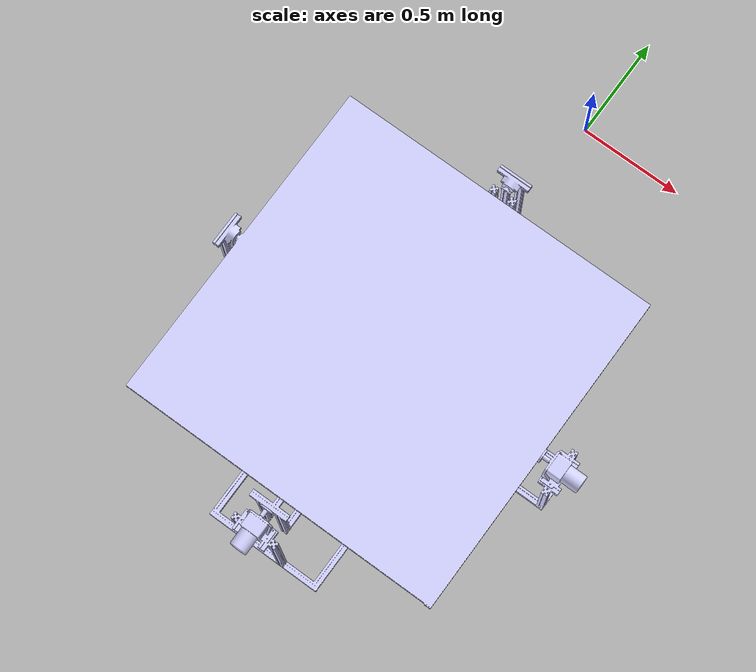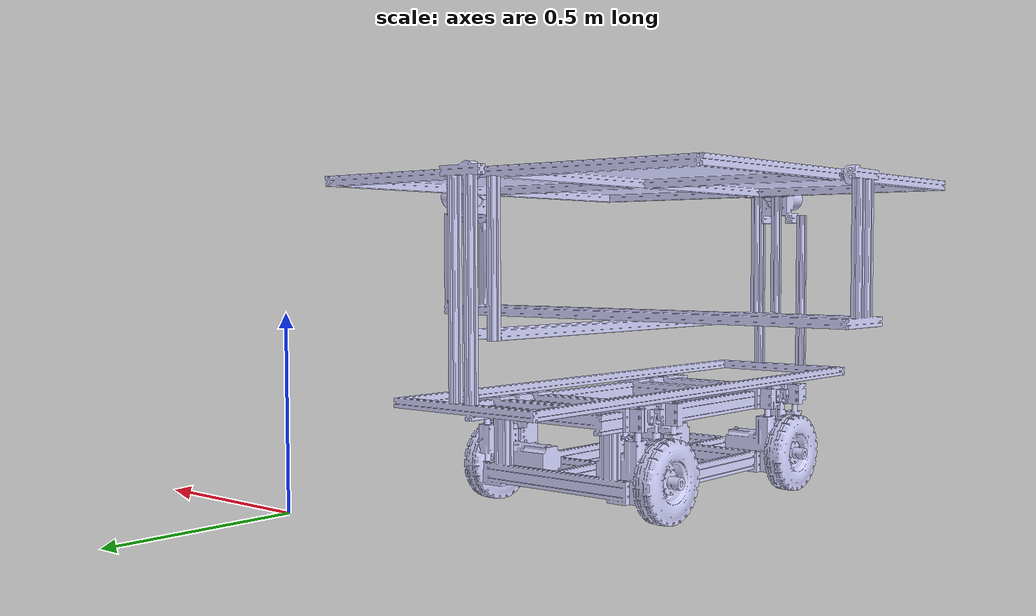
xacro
<?xml version="1.0" encoding="utf-8"?>

<robot name="Mobile_Leveling_Platform_V2" xmlns:xacro="http://ros.org/wiki/xacro">
<!--Mobile_Robot control-->
<gazebo>
  <plugin name="skid_steer_drive_controller" filename="libgazebo_ros_skid_steer_drive.so">
    <updateRate>10</updateRate>
    <robotNamespace>/</robotNamespace>
    <leftFrontJoint>front_L_motor_rev_joint</leftFrontJoint>
    <rightFrontJoint>front_R_motor_rev_joint</rightFrontJoint>
    <leftRearJoint>rear_L_motor_rev_joint</leftRearJoint>
    <rightRearJoint>rear_R_motor_rev_joint</rightRearJoint>
    <wheelSeparation>0.035</wheelSeparation>
    <wheelDiameter>0.07</wheelDiameter>
    <robotBaseFrame>base_link</robotBaseFrame>
    <torque>10</torque>
    <commandTopic>twist2gazebo</commandTopic>
    <broadcastTF>true</broadcastTF>
  </plugin>
</gazebo>
<!--Leveling_Platform control-->
<gazebo>
  <plugin name="gazebo_ros_control" filename="libgazebo_ros_control.so">
    <robotNamespace>/MLP</robotNamespace>
    <robotSimType>gazebo_ros_control/DefaultRobotHWSim</robotSimType>
  </plugin>
</gazebo>

<transmission name="trans1">
   <type>transmission_interface/SimpleTransmission</type>
   <joint name="front_motor_rev_joint">
     <hardwareInterface>hardware_interface/PositionJointInterface</hardwareInterface>
   </joint>
   <actuator name="front_motor_rev_motor">
     <mechanicalReduction>50</mechanicalReduction>
     <hardwareInterface>hardware_interface/PositionJointInterface</hardwareInterface>
   </actuator>
</transmission>

<transmission name="trans2">
   <type>transmission_interface/SimpleTransmission</type>
   <joint name="upper_motor_rev_joint">
     <hardwareInterface>hardware_interface/PositionJointInterface</hardwareInterface>
   </joint>
   <actuator name="upper_motor_rev_motor">
     <mechanicalReduction>50</mechanicalReduction>
     <hardwareInterface>hardware_interface/PositionJointInterface</hardwareInterface>
   </actuator>
</transmission>

  <gazebo reference="imu_link">
    <gravity>true</gravity>
    <sensor name="imu_sensor" type="imu">
      <always_on>true</always_on>
      <update_rate>100</update_rate>
      <visualize>true</visualize>
      <topic>__default_topic__</topic>
      <plugin filename="libgazebo_ros_imu_sensor.so" name="imu_plugin">
        <topicName>imu</topicName>
        <bodyName>imu_link</bodyName>
        <updateRateHZ>10.0</updateRateHZ>
        <gaussianNoise>0.0</gaussianNoise>
        <xyzOffset>0 0 0</xyzOffset>
        <rpyOffset>0 0 0</rpyOffset>
        <frameName>imu_link</frameName>
        <initialOrientationAsReference>false</initialOrientationAsReference>
      </plugin>
      <pose>0 0 0 0 0 0</pose>
    </sensor>
  </gazebo>

<!-- base_link mass :15.686-->
  <link
    name="base_link">
    <inertial>
      <origin
        xyz="1.2919E-06 -0.025389 1.4989"
        rpy="0 0 0" />
      <mass
        value="15.686" />
      <inertia
        ixx="0.048124"
        ixy="1.5141E-19"
        ixz="2.2275E-07"
        iyy="0.1289"
        iyz="-1.2904E-17"
        izz="0.10413" />
    </inertial>
    <visual>
      <origin
        xyz="0 0 0"
        rpy="0 0 0" />
      <geometry>
        <mesh
          filename="package://Mobile_Leveling_Platform_V2/meshes/base_link.STL" />
      </geometry>
      <material
        name="">
        <color
          rgba="0.82353 0.82353 1 1" />
      </material>
    </visual>
    <collision>
      <origin
        xyz="0 0 0"
        rpy="0 0 0" />
      <geometry>
        <mesh
          filename="package://Mobile_Leveling_Platform_V2/meshes/base_link.STL" />
      </geometry>
    </collision>
  </link>
  <link
    name="front_L_motor_rev_link">
    <inertial>
      <origin
        xyz="0.00043897 0.00010784 0.0089921"
        rpy="0 0 0" />
      <mass
        value="0.075717" />
      <inertia
        ixx="3.7606E-05"
        ixy="1.0136E-07"
        ixz="-5.7378E-07"
        iyy="3.7419E-05"
        iyz="-1.7765E-07"
        izz="3.9868E-05" />
    </inertial>
    <visual>
      <origin
        xyz="0 0 0"
        rpy="0 0 0" />
      <geometry>
        <mesh
          filename="package://Mobile_Leveling_Platform_V2/meshes/front_L_motor_rev_link.STL" />
      </geometry>
      <material
        name="">
        <color
          rgba="0.82353 0.82353 1 1" />
      </material>
    </visual>
    <collision>
      <origin
        xyz="0 0 0"
        rpy="0 0 0" />
      <geometry>
        <mesh
          filename="package://Mobile_Leveling_Platform_V2/meshes/front_L_motor_rev_link.STL" />
      </geometry>
    </collision>
  </link>
  <joint
    name="front_L_motor_rev_joint"
    type="continuous">
    <origin
      xyz="0.363 -1.8709 -0.041791"
      rpy="3.1416 -1.5708 0" />
    <parent
      link="base_link" />
    <child
      link="front_L_motor_rev_link" />
    <axis
      xyz="0 0 1" />
  </joint>
  <link
    name="front_L_tire_link">
    <inertial>
      <origin
        xyz="-3.7896E-07 2.773E-06 2.1792E-08"
        rpy="0 0 0" />
      <mass
        value="2.9551" />
      <inertia
        ixx="0.029016"
        ixy="-3.4163E-07"
        ixz="-1.4575E-08"
        iyy="0.015583"
        iyz="-7.8838E-08"
        izz="0.015587" />
    </inertial>
    <visual>
      <origin
        xyz="0 0 0"
        rpy="0 0 0" />
      <geometry>
        <mesh
          filename="package://Mobile_Leveling_Platform_V2/meshes/front_L_tire_link.STL" />
      </geometry>
      <material
        name="">
        <color
          rgba="0.82353 0.82353 1 1" />
      </material>
    </visual>
    <collision>
      <origin
        xyz="0 0 0"
        rpy="0 0 0" />
      <geometry>
        <mesh
          filename="package://Mobile_Leveling_Platform_V2/meshes/front_L_tire_link.STL" />
      </geometry>
    </collision>
  </link>
  <joint
    name="front_L_tire_joint"
    type="fixed">
    <origin
      xyz="0 0 -0.011"
      rpy="0.13209 1.5708 0" />
    <parent
      link="front_L_motor_rev_link" />
    <child
      link="front_L_tire_link" />
    <axis
      xyz="0 0 0" />
  </joint>
  <link
    name="front_R_motor_link">
    <inertial>
      <origin
        xyz="0.00043897 0.00010784 0.0089921"
        rpy="0 0 0" />
      <mass
        value="0.075717" />
      <inertia
        ixx="3.7606E-05"
        ixy="1.0136E-07"
        ixz="-5.7378E-07"
        iyy="3.7419E-05"
        iyz="-1.7765E-07"
        izz="3.9868E-05" />
    </inertial>
    <visual>
      <origin
        xyz="0 0 0"
        rpy="0 0 0" />
      <geometry>
        <mesh
          filename="package://Mobile_Leveling_Platform_V2/meshes/front_R_motor_link.STL" />
      </geometry>
      <material
        name="">
        <color
          rgba="0.82353 0.82353 1 1" />
      </material>
    </visual>
    <collision>
      <origin
        xyz="0 0 0"
        rpy="0 0 0" />
      <geometry>
        <mesh
          filename="package://Mobile_Leveling_Platform_V2/meshes/front_R_motor_link.STL" />
      </geometry>
    </collision>
  </link>
  <joint
    name="front_R_motor_rev_joint"
    type="continuous">
    <origin
      xyz="-0.363 -1.8709 -0.041791"
      rpy="0 -1.5708 0" />
    <parent
      link="base_link" />
    <child
      link="front_R_motor_link" />
    <axis
      xyz="0 0 -1" />
  </joint>
  <link
    name="front_R_tire_link">
    <inertial>
      <origin
        xyz="-3.786E-07 2.7731E-06 2.2371E-08"
        rpy="0 0 0" />
      <mass
        value="2.9551" />
      <inertia
        ixx="0.029016"
        ixy="-3.416E-07"
        ixz="-1.4569E-08"
        iyy="0.015583"
        iyz="-7.8811E-08"
        izz="0.015587" />
    </inertial>
    <visual>
      <origin
        xyz="0 0 0"
        rpy="0 0 0" />
      <geometry>
        <mesh
          filename="package://Mobile_Leveling_Platform_V2/meshes/front_R_tire_link.STL" />
      </geometry>
      <material
        name="">
        <color
          rgba="0.82353 0.82353 1 1" />
      </material>
    </visual>
    <collision>
      <origin
        xyz="0 0 0"
        rpy="0 0 0" />
      <geometry>
        <mesh
          filename="package://Mobile_Leveling_Platform_V2/meshes/front_R_tire_link.STL" />
      </geometry>
    </collision>
  </link>
  <joint
    name="front_R_tire_joint"
    type="fixed">
    <origin
      xyz="0 0 -0.011"
      rpy="0.14726 1.5708 0" />
    <parent
      link="front_R_motor_link" />
    <child
      link="front_R_tire_link" />
    <axis
      xyz="0 0 0" />
  </joint>
  <link
    name="rear_L_motor_rev_link">
    <inertial>
      <origin
        xyz="0.00043897 0.00010784 0.0089921"
        rpy="0 0 0" />
      <mass
        value="0.075717" />
      <inertia
        ixx="3.7606E-05"
        ixy="1.0136E-07"
        ixz="-5.7378E-07"
        iyy="3.7419E-05"
        iyz="-1.7765E-07"
        izz="3.9868E-05" />
    </inertial>
    <visual>
      <origin
        xyz="0 0 0"
        rpy="0 0 0" />
      <geometry>
        <mesh
          filename="package://Mobile_Leveling_Platform_V2/meshes/rear_L_motor_rev_link.STL" />
      </geometry>
      <material
        name="">
        <color
          rgba="0.82353 0.82353 1 1" />
      </material>
    </visual>
    <collision>
      <origin
        xyz="0 0 0"
        rpy="0 0 0" />
      <geometry>
        <mesh
          filename="package://Mobile_Leveling_Platform_V2/meshes/rear_L_motor_rev_link.STL" />
      </geometry>
    </collision>
  </link>
  <joint
    name="rear_L_motor_rev_joint"
    type="continuous">
    <origin
      xyz="0.363 -1.1269 -0.041791"
      rpy="3.1416 -1.5708 0" />
    <parent
      link="base_link" />
    <child
      link="rear_L_motor_rev_link" />
    <axis
      xyz="0 0 1" />
  </joint>
  <link
    name="rear_L_tire_link">
    <inertial>
      <origin
        xyz="-3.7891E-07 2.7734E-06 2.19E-08"
        rpy="0 0 0" />
      <mass
        value="2.9551" />
      <inertia
        ixx="0.029016"
        ixy="-3.4161E-07"
        ixz="-1.4568E-08"
        iyy="0.015583"
        iyz="-7.8816E-08"
        izz="0.015587" />
    </inertial>
    <visual>
      <origin
        xyz="0 0 0"
        rpy="0 0 0" />
      <geometry>
        <mesh
          filename="package://Mobile_Leveling_Platform_V2/meshes/rear_L_tire_link.STL" />
      </geometry>
      <material
        name="">
        <color
          rgba="0.82353 0.82353 1 1" />
      </material>
    </visual>
    <collision>
      <origin
        xyz="0 0 0"
        rpy="0 0 0" />
      <geometry>
        <mesh
          filename="package://Mobile_Leveling_Platform_V2/meshes/rear_L_tire_link.STL" />
      </geometry>
    </collision>
  </link>
  <joint
    name="rear_L_tire_joint"
    type="fixed">
    <origin
      xyz="0 0 -0.011"
      rpy="0.13537 -1.5708 0" />
    <parent
      link="rear_L_motor_rev_link" />
    <child
      link="rear_L_tire_link" />
    <axis
      xyz="0 0 0" />
  </joint>
  <link
    name="rear_R_motor_rev_link">
    <inertial>
      <origin
        xyz="0.00043897 0.00010784 0.0089921"
        rpy="0 0 0" />
      <mass
        value="0.075717" />
      <inertia
        ixx="3.7606E-05"
        ixy="1.0136E-07"
        ixz="-5.7378E-07"
        iyy="3.7419E-05"
        iyz="-1.7765E-07"
        izz="3.9868E-05" />
    </inertial>
    <visual>
      <origin
        xyz="0 0 0"
        rpy="0 0 0" />
      <geometry>
        <mesh
          filename="package://Mobile_Leveling_Platform_V2/meshes/rear_R_motor_rev_link.STL" />
      </geometry>
      <material
        name="">
        <color
          rgba="0.82353 0.82353 1 1" />
      </material>
    </visual>
    <collision>
      <origin
        xyz="0 0 0"
        rpy="0 0 0" />
      <geometry>
        <mesh
          filename="package://Mobile_Leveling_Platform_V2/meshes/rear_R_motor_rev_link.STL" />
      </geometry>
    </collision>
  </link>
  <joint
    name="rear_R_motor_rev_joint"
    type="continuous">
    <origin
      xyz="-0.363 -1.1269 -0.041791"
      rpy="0 -1.5708 0" />
    <parent
      link="base_link" />
    <child
      link="rear_R_motor_rev_link" />
    <axis
      xyz="0 0 -1" />
  </joint>
  <link
    name="rear_R_tire_link">
    <inertial>
      <origin
        xyz="-3.7891E-07 2.7731E-06 2.1853E-08"
        rpy="0 0 0" />
      <mass
        value="2.9551" />
      <inertia
        ixx="0.029016"
        ixy="-3.4163E-07"
        ixz="-1.4593E-08"
        iyy="0.015583"
        iyz="-7.8851E-08"
        izz="0.015587" />
    </inertial>
    <visual>
      <origin
        xyz="0 0 0"
        rpy="0 0 0" />
      <geometry>
        <mesh
          filename="package://Mobile_Leveling_Platform_V2/meshes/rear_R_tire_link.STL" />
      </geometry>
      <material
        name="">
        <color
          rgba="0.82353 0.82353 1 1" />
      </material>
    </visual>
    <collision>
      <origin
        xyz="0 0 0"
        rpy="0 0 0" />
      <geometry>
        <mesh
          filename="package://Mobile_Leveling_Platform_V2/meshes/rear_R_tire_link.STL" />
      </geometry>
    </collision>
  </link>
  <joint
    name="rear_R_tire_joint"
    type="fixed">
    <origin
      xyz="0 0 -0.011"
      rpy="0.1395 1.5708 0" />
    <parent
      link="rear_R_motor_rev_link" />
    <child
      link="rear_R_tire_link" />
    <axis
      xyz="0 0 0" />
  </joint>
  <link
    name="mating_link">
    <inertial>
      <origin
        xyz="0.28001 -0.884 -0.041642"
        rpy="0 0 0" />
      <mass
        value="14.754" />
      <inertia
        ixx="1.0335"
        ixy="-4.5514E-06"
        ixz="-1.0552E-18"
        iyy="0.15781"
        iyz="1.1729E-18"
        izz="1.1838" />
    </inertial>
    <visual>
      <origin
        xyz="0 0 0"
        rpy="0 0 0" />
      <geometry>
        <mesh
          filename="package://Mobile_Leveling_Platform_V2/meshes/mating_link.STL" />
      </geometry>
      <material
        name="">
        <color
          rgba="0.82353 0.82353 1 1" />
      </material>
    </visual>
    <collision>
      <origin
        xyz="0 0 0"
        rpy="0 0 0" />
      <geometry>
        <mesh
          filename="package://Mobile_Leveling_Platform_V2/meshes/mating_link.STL" />
      </geometry>
    </collision>
  </link>
  <joint
    name="mating_joint"
    type="fixed">
    <origin
      xyz="-0.28 -0.61489 0.20249"
      rpy="0 0 0" />
    <parent
      link="base_link" />
    <child
      link="mating_link" />
    <axis
      xyz="0 0 0" />
  </joint>
  <link
    name="front_leveling_link">
    <inertial>
      <origin
        xyz="-0.094 -0.0078388 0.49881"
        rpy="0 0 0" />
      <mass
        value="1.9876" />
      <inertia
        ixx="0.025468"
        ixy="3.1399E-20"
        ixz="-5.1038E-19"
        iyy="0.024479"
        iyz="-4.9544E-05"
        izz="0.0026287" />
    </inertial>
    <visual>
      <origin
        xyz="0 0 0"
        rpy="0 0 0" />
      <geometry>
        <mesh
          filename="package://Mobile_Leveling_Platform_V2/meshes/front_leveling_link.STL" />
      </geometry>
      <material
        name="">
        <color
          rgba="0.82353 0.82353 1 1" />
      </material>
    </visual>
    <collision>
      <origin
        xyz="0 0 0"
        rpy="0 0 0" />
      <geometry>
        <mesh
          filename="package://Mobile_Leveling_Platform_V2/meshes/front_leveling_link.STL" />
      </geometry>
    </collision>
  </link>
  <joint
    name="front_leveling_joint"
    type="fixed">
    <origin
      xyz="0.374 -1.768 0.015"
      rpy="0 0 0" />
    <parent
      link="mating_link" />
    <child
      link="front_leveling_link" />
    <axis
      xyz="0 0 0" />
  </joint>
  <link
    name="front_motor_rev_link">
    <inertial>
      <origin
        xyz="9.7145E-16 0.030907 2.2204E-16"
        rpy="0 0 0" />
      <mass
        value="0.025329" />
      <inertia
        ixx="6.8991E-06"
        ixy="-2.7437E-22"
        ixz="3.1069E-40"
        iyy="1.0461E-05"
        iyz="1.7456E-23"
        izz="6.8991E-06" />
    </inertial>
    <visual>
      <origin
        xyz="0 0 0"
        rpy="0 0 0" />
      <geometry>
        <mesh
          filename="package://Mobile_Leveling_Platform_V2/meshes/front_motor_rev_link.STL" />
      </geometry>
      <material
        name="">
        <color
          rgba="0.82353 0.82353 1 1" />
      </material>
    </visual>
    <collision>
      <origin
        xyz="0 0 0"
        rpy="0 0 0" />
      <geometry>
        <mesh
          filename="package://Mobile_Leveling_Platform_V2/meshes/front_motor_rev_link.STL" />
      </geometry>
    </collision>
  </link>

  <joint
    name="front_motor_rev_joint"
    type="revolute">

    <origin
      xyz="-0.094 0.055 0.67"
      rpy="3.1416 -0.17782 -3.1416" />
    <parent
      link="front_leveling_link" />
    <child
      link="front_motor_rev_link" />
    <axis
      xyz="0 1 0" />
    <limit
      lower="-0.5236"
      upper="0.5236"
      effort="1"
      velocity="1" />
  </joint>

  <link
    name="under_upper_link">
    <inertial>
      <origin
        xyz="0.1862 0.78081 -0.32342"
        rpy="0 0 0" />
      <mass
        value="8.5158" />
      <inertia
        ixx="0.46712"
        ixy="-2.4082E-19"
        ixz="4.9544E-05"
        iyy="0.53467"
        iyz="-3.1153E-19"
        izz="0.92485" />
    </inertial>
    <visual>
      <origin
        xyz="0 0 0"
        rpy="0 0 0" />
      <geometry>
        <mesh
          filename="package://Mobile_Leveling_Platform_V2/meshes/under_upper_link.STL" />
      </geometry>
      <material
        name="">
        <color
          rgba="0.82353 0.82353 1 1" />
      </material>
    </visual>
    <collision>
      <origin
        xyz="0 0 0"
        rpy="0 0 0" />
      <geometry>
        <mesh
          filename="package://Mobile_Leveling_Platform_V2/meshes/under_upper_link.STL" />
      </geometry>
    </collision>
  </link>
  <joint
    name="under_upper_joint"
    type="fixed">
    <origin
      xyz="0.087597 0.053 0.015743"
      rpy="-3.1416 0.17782 -3.1416" />
    <parent
      link="front_motor_rev_link" />
    <child
      link="under_upper_link" />
    <axis
      xyz="0 0 0" />
  </joint>
  <link
    name="upper_motor_rev_link">
    <inertial>
      <origin
        xyz="-2.2204E-16 0.030907 1.1102E-16"
        rpy="0 0 0" />
      <mass
        value="0.025329" />
      <inertia
        ixx="6.8991E-06"
        ixy="5.9833E-22"
        ixz="-5.5917E-22"
        iyy="1.0461E-05"
        iyz="1.757E-23"
        izz="6.8991E-06" />
    </inertial>
    <visual>
      <origin
        xyz="0 0 0"
        rpy="0 0 0" />
      <geometry>
        <mesh
          filename="package://Mobile_Leveling_Platform_V2/meshes/upper_motor_rev_link.STL" />
      </geometry>
      <material
        name="">
        <color
          rgba="0.82353 0.82353 1 1" />
      </material>
    </visual>
    <collision>
      <origin
        xyz="0 0 0"
        rpy="0 0 0" />
      <geometry>
        <mesh
          filename="package://Mobile_Leveling_Platform_V2/meshes/upper_motor_rev_link.STL" />
      </geometry>
    </collision>
  </link>
  <joint
    name="upper_motor_rev_joint"
    type="revolute">
    <origin
      xyz="0.877 0.79375 0"
      rpy="0 -0.0058456 1.5708" />
    <parent
      link="under_upper_link" />
    <child
      link="upper_motor_rev_link" />
    <axis
      xyz="0 1 0" />
    <limit
      lower="-0.5236"
      upper="0.5236"
      effort="1"
      velocity="1" />
  </joint>
  <link
    name="upper_link">
    <inertial>
      <origin
        xyz="-0.00040832 -0.00031982 -0.0067744"
        rpy="0 0 0" />
      <mass
        value="12.075" />
      <inertia
        ixx="1.566"
        ixy="-7.157E-20"
        ixz="-4.6083E-20"
        iyy="1.6523"
        iyz="1.6457E-19"
        izz="3.2174" />
    </inertial>
    <visual>
      <origin
        xyz="0 0 0"
        rpy="0 0 0" />
      <geometry>
        <mesh
          filename="package://Mobile_Leveling_Platform_V2/meshes/upper_link.STL" />
      </geometry>
      <material
        name="">
        <color
          rgba="0.82353 0.82353 1 1" />
      </material>
    </visual>
    <collision>
      <origin
        xyz="0 0 0"
        rpy="0 0 0" />
      <geometry>
        <mesh
          filename="package://Mobile_Leveling_Platform_V2/meshes/upper_link.STL" />
      </geometry>
    </collision>
  </link>
  <joint
    name="upper_joint"
    type="fixed">
    <origin
      xyz="0.0038376 0.788 0.014978"
      rpy="-0.0058456 0 -1.5708" />
    <parent
      link="upper_motor_rev_link" />
    <child
      link="upper_link" />
    <axis
      xyz="0 0 0" />
  </joint>
  <link
    name="rear_Leveling_link">
    <inertial>
      <origin
        xyz="0.03175 -0.0029488 0.39061"
        rpy="0 0 0" />
      <mass
        value="1.1026" />
      <inertia
        ixx="0.032266"
        ixy="1.2414E-20"
        ixz="4.614E-19"
        iyy="0.032486"
        iyz="-1.0871E-20"
        izz="0.0003903" />
    </inertial>
    <visual>
      <origin
        xyz="0 0 0"
        rpy="0 0 0" />
      <geometry>
        <mesh
          filename="package://Mobile_Leveling_Platform_V2/meshes/rear_Leveling_link.STL" />
      </geometry>
      <material
        name="">
        <color
          rgba="0.82353 0.82353 1 1" />
      </material>
    </visual>
    <collision>
      <origin
        xyz="0 0 0"
        rpy="0 0 0" />
      <geometry>
        <mesh
          filename="package://Mobile_Leveling_Platform_V2/meshes/rear_Leveling_link.STL" />
      </geometry>
    </collision>
  </link>
  <joint
    name="rear_Leveling_joint"
    type="fixed">
    <origin
      xyz="0.24825 0 0.015"
      rpy="0 0 0" />
    <parent
      link="mating_link" />
    <child
      link="rear_Leveling_link" />
    <axis
      xyz="0 0 0" />
  </joint>

  <link name ="imu_link">
    <inertial>
      <origin
        xyz="-0.00040832 -0.00031982 -0.0017744"
        rpy="0 0 0" />
      <mass
        value="0.1" />
      <inertia
        ixx="0.000001667"
        ixy="0"
        ixz="0"
        iyy="0.000001667"
        iyz="0"
        izz="0.000001667" />
    </inertial>
    <visual>
      <origin
        xyz="-0.00040832 -0.00031982 -0.0017744"
        rpy="0 0 0" />
      <geometry>
	<box size = "0.01 0.01 0.01"/>
      </geometry>
      <material
        name="">
        <color
          rgba="0.82353 0.82353 1 1" />
      </material>
    </visual>
    <collision>
      <origin
        xyz="-0.00040832 -0.00031982 -0.0017744"
        rpy="0 0 0" />
      <geometry>
	<box size = "0.01 0.01 0.01"/>
      </geometry>
    </collision>

   <sensor name="IRLock" type="logical_camera">
     <always_on>true</always_on>
     <update_rate>50.0</update_rate>
     <visualize>true</visualize>
     <topic>/irlock</topic>
     <logical_camera>
     <horizontal_fov>0.611</horizontal_fov>
     <near>0.1</near>
     <far>15</far>
     <aspect_ratio>1.71</aspect_ratio>
     </logical_camera>
     <plugin name="irlock_plugin" filename="libgazebo_irlock_plugin.so">
       <robotNamespace></robotNamespace>
     </plugin>
   </sensor>

  </link>

  <joint
    name="imu_joint"
    type="fixed">
    <origin
      xyz="-0.00040832 -0.00031982 -0.0067744"
      rpy="-0.0058456 0 -1.5708" />
    <parent
      link="upper_link" />
    <child
      link="imu_link" />
    <axis
      xyz="0 0 0" />
  </joint>

</robot>
